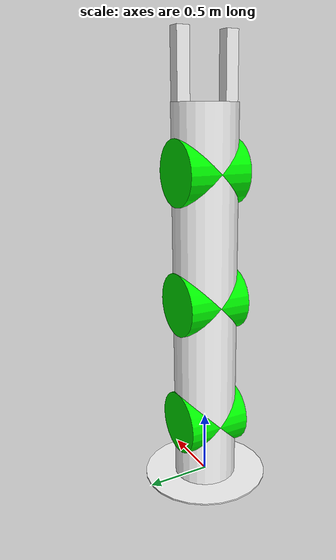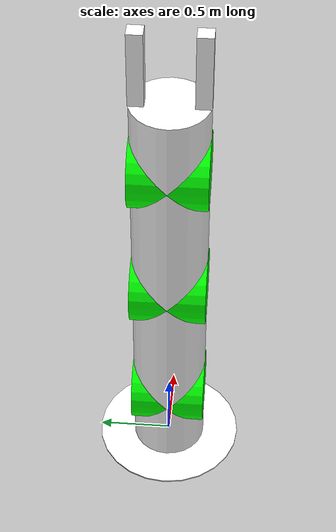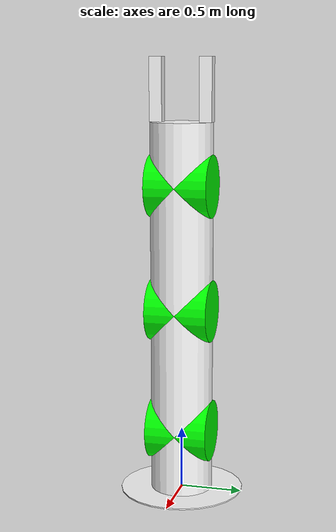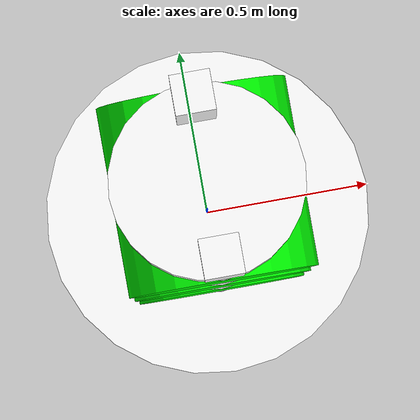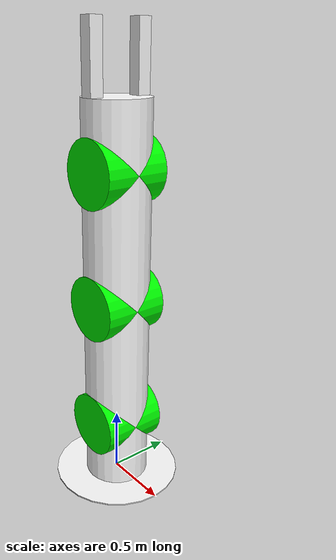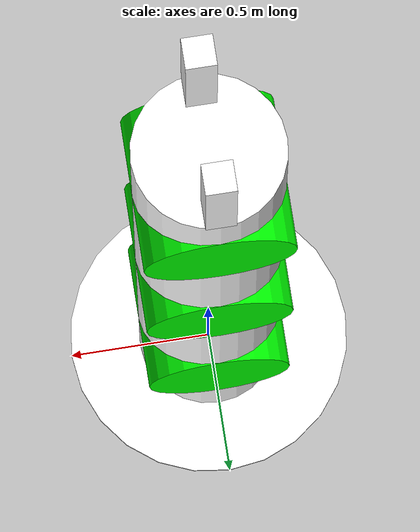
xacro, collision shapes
<?xml version="1.0"?>
<robot xmlns:xacro="http://www.ros.org/wiki/xacro"
       name="rosbook_arm">

  <!-- Base, arm, gripper and RGB-D sensor -->
  <xacro:include filename="$(find rosbook_arm_description)/urdf/base/base.urdf.xacro"/>
  <xacro:include filename="$(find rosbook_arm_description)/urdf/arm/arm.urdf.xacro"/>
  <xacro:include filename="$(find rosbook_arm_description)/urdf/gripper/gripper.urdf.xacro"/>
  <xacro:include filename="$(find rosbook_arm_description)/urdf/sensors/xtion_pro_live.urdf.xacro"/>

  <!-- Generic simulator_gazebo plugins -->
  <xacro:include filename="$(find rosbook_arm_description)/gazebo/gazebo.urdf.xacro"/>

  <!-- Materials for visualization -->
  <xacro:include filename="$(find rosbook_arm_description)/urdf/materials.urdf.xacro"/>

  <!-- Define arm with gripper mounted on a base -->
  <xacro:base name="base"/>
  <xacro:arm parent="base"/>
  <xacro:gripper parent="tool"/>

  <!-- Define RGB-D sensor -->
  <xacro:xtion_pro_live name="rgbd_camera" parent="base">
    <origin xyz="0.5 0 3.5" rpy="0 ${75.0 * deg_to_rad} 0"/>
    <origin xyz="0 0 0" rpy="${-90.0 * deg_to_rad} 0 ${-90.0 * deg_to_rad}"/>
  </xacro:xtion_pro_live>
</robot>

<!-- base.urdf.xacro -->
<robot xmlns:xacro="http://www.ros.org/wiki/xacro">

  <xacro:include filename="$(find rosbook_arm_description)/urdf/inertia.xacro"/>
  <xacro:include filename="$(find rosbook_arm_description)/urdf/base/base.gazebo.xacro"/>

  <xacro:macro name="base" params="name">
    <link name="${name}_link">
      <visual>
        <geometry>
          <cylinder length="0.01" radius="0.5"/>
        </geometry>
        <origin xyz="0.0 0.0 0.0"/>
        <material name="white"/>
      </visual>

      <collision>
        <geometry>
          <cylinder length="0.01" radius="0.5"/>
        </geometry>
        <origin xyz="0.0 0.0 0.0"/>
      </collision>

      <inertial>
        <origin xyz="0.0 0.0 0.0"/>
        <mass value="1"/>
        <cylinder_inertia mass="1" radius="0.5" length="0.01"/>
      </inertial>
    </link>

    <!-- Simulation (gazebo) -->
    <base_gazebo/>
  </xacro:macro>

</robot>

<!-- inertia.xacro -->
<robot xmlns:xacro="http://www.ros.org/wiki/xacro">

  <!-- Moment of inertia tensor for a solid cuboid of x, y and z dimensions
       (width, depth and height).
       See http://en.wikipedia.org/wiki/List_of_moments_of_inertia -->
  <macro name="cuboid_inertia" params="mass x y z">
    <inertia ixx="${1/12 * mass * (y * y + z * z)}" ixy="0.0" ixz="0.0"
             iyy="${1/12 * mass * (x * x + z * z)}" iyz="0.0"
             izz="${1/12 * mass * (x * x + y * y)}"/>
  </macro>

  <!-- Moment of inertia tensor for a solid cylinder of given mass, radius and
       length.
       See http://en.wikipedia.org/wiki/List_of_moments_of_inertia -->
  <macro name="cylinder_inertia" params="mass radius length">
    <inertia ixx="${1/12 * mass * (3 * radius * radius + length * length)}" ixy="0.0" ixz="0.0"
             iyy="${1/12 * mass * (3 * radius * radius + length * length)}" iyz="0.0"
             izz="${1/2  * mass * radius * radius}"/>
  </macro>

</robot>

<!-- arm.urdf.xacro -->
<robot xmlns:xacro="http://www.ros.org/wiki/xacro">

  <xacro:include filename="$(find rosbook_arm_description)/urdf/deg_to_rad.xacro"/>
  <xacro:include filename="$(find rosbook_arm_description)/urdf/inertia.xacro"/>
  <xacro:include filename="$(find rosbook_arm_description)/urdf/arm/arm.transmission.xacro"/>
  <xacro:include filename="$(find rosbook_arm_description)/urdf/arm/arm.gazebo.xacro"/>

  <xacro:property name="arm_mass"     value="0.01"/>
  <xacro:property name="arm_effort"   value="10.0"/>
  <xacro:property name="arm_velocity" value="5.0"/>
  <xacro:property name="arm_friction" value="0.0"/>
  <xacro:property name="arm_damping"  value="0.7"/>
  <xacro:property name="arm_eps"      value="0.01"/>

  <xacro:macro name="arm" params="parent">
    <link name="shoulder_link">
      <visual>
        <geometry>
          <cylinder length="0.5" radius="0.25"/>
        </geometry>
        <origin xyz="0.0 0.0 0.25"/>
        <material name="white"/>
      </visual>

      <collision>
        <geometry>
          <cylinder length="0.5" radius="0.25"/>
        </geometry>
        <origin xyz="0.0 0.0 0.25"/>
      </collision>

      <inertial>
        <origin xyz="0.0 0.0 0.25"/>
        <mass value="${arm_mass}"/>
        <cylinder_inertia mass="${arm_mass}" radius="0.25" length="0.5"/>
      </inertial>
    </link>

    <link name="upper_arm_link">
      <visual>
        <geometry>
          <cylinder length="1" radius="0.25"/>
        </geometry>
        <origin xyz="0.0 0.0 0.5"/>
        <material name="white"/>
      </visual>

      <collision>
        <geometry>
          <cylinder length="1" radius="0.25"/>
        </geometry>
        <origin xyz="0.0 0.0 0.5"/>
      </collision>

      <inertial>
        <origin xyz="0.0 0.0 0.5"/>
        <mass value="${arm_mass}"/>
        <cylinder_inertia mass="${arm_mass}" radius="0.25" length="1"/>
      </inertial>
    </link>

    <link name="forearm_link">
      <visual>
        <geometry>
          <cylinder length="1" radius="0.25"/>
        </geometry>
        <origin xyz="0.0 0.0 0.5"/>
        <material name="white"/>
      </visual>

      <collision>
        <geometry>
          <cylinder length="1" radius="0.25"/>
        </geometry>
        <origin xyz="0.0 0.0 0.5"/>
      </collision>

      <inertial>
        <origin xyz="0.0 0.0 0.5"/>
        <mass value="${arm_mass}"/>
        <cylinder_inertia mass="${arm_mass}" radius="0.25" length="1"/>
      </inertial>
    </link>

    <link name="rotor_0_link">
      <visual>
        <geometry>
          <cylinder length="0.5" radius="0.25"/>
        </geometry>
        <origin xyz="0.0 0.0 0.5" rpy="1.57079633 0.0 0.0"/>
        <material name="green"/>
      </visual>

      <collision>
        <geometry>
          <cylinder length="0.5" radius="0.25"/>
        </geometry>
        <origin xyz="0.0 0.0 0.5" rpy="1.57079633 0.0 0.0"/>
      </collision>

      <inertial>
        <origin xyz="0.0 0.0 0.5" rpy="1.57079633 0.0 0.0"/>
        <mass value="${arm_mass}"/>
        <cylinder_inertia mass="${arm_mass}" radius="0.25" length="0.5"/>
      </inertial>
    </link>

    <link name="rotor_1_link">
      <visual>
        <geometry>
          <cylinder length="0.5" radius="0.25"/>
        </geometry>
        <origin xyz="0.0 0.0 0.5" rpy="1.57079633 0.0 0.0"/>
        <material name="green"/>
      </visual>

      <collision>
        <geometry>
          <cylinder length="0.5" radius="0.25"/>
        </geometry>
        <origin xyz="0.0 0.0 0.5" rpy="1.57079633 0.0 0.0"/>
      </collision>

      <inertial>
        <origin xyz="0.0 0.0 0.5" rpy="1.57079633 0.0 0.0"/>
        <mass value="${arm_mass}"/>
        <cylinder_inertia mass="${arm_mass}" radius="0.25" length="0.5"/>
      </inertial>
    </link>

    <link name="rotor_2_link">
      <visual>
        <geometry>
          <cylinder length="0.5" radius="0.25"/>
        </geometry>
        <origin xyz="0.0 0.0 0.5" rpy="1.57079633 0.0 0.0"/>
        <material name="green"/>
      </visual>

      <collision>
        <geometry>
          <cylinder length="0.5" radius="0.25"/>
        </geometry>
        <origin xyz="0.0 0.0 0.5" rpy="1.57079633 0.0 0.0"/>
      </collision>

      <inertial>
        <origin xyz="0.0 0.0 0.5" rpy="1.57079633 0.0 0.0"/>
        <mass value="${arm_mass}"/>
        <cylinder_inertia mass="${arm_mass}" radius="0.25" length="0.5"/>
      </inertial>
    </link>

    <link name="tool_link">
      <visual>
        <geometry>
          <cylinder length="0.5" radius="0.25"/>
        </geometry>
        <origin xyz="0.0 0.0 0.25"/>
        <material name="white"/>
      </visual>

      <collision>
        <geometry>
          <cylinder length="0.5" radius="0.25"/>
        </geometry>
        <origin xyz="0.0 0.0 0.25"/>
      </collision>

      <inertial>
        <origin xyz="0.0 0.0 0.25"/>
        <mass value="${arm_mass}"/>
        <cylinder_inertia mass="${arm_mass}" radius="0.25" length="0.5"/>
      </inertial>
    </link>

    <joint name="shoulder_joint" type="revolute">
      <parent link="${parent}_link"/>
      <child link="shoulder_link"/>
      <origin xyz="0.0 0.0 0.0"/>
      <axis xyz="0 0 1"/>
      <limit effort="${arm_effort}"
             lower="${-180.0 * deg_to_rad}" upper="${180.0 * deg_to_rad}"
             velocity="${arm_velocity}"/>
      <dynamics friction="${arm_friction}" damping="${arm_damping}"/>

      <safety_controller k_position="20"
                         k_velocity="20"
                         soft_lower_limit="${-180.0 * deg_to_rad + arm_eps}"
                         soft_upper_limit="${ 180.0 * deg_to_rad - arm_eps}"/>
    </joint>

    <joint name="rotor_0_joint" type="revolute">
      <parent link="shoulder_link"/>
      <child link="rotor_0_link"/>
      <origin xyz="0.0 0.0 0.0"/>
      <axis xyz="0 0 1"/>
      <limit effort="${arm_effort}"
             lower="${-120.0 * deg_to_rad}" upper="${120.0 * deg_to_rad}"
             velocity="${arm_velocity}"/>
      <dynamics friction="${arm_friction}" damping="${arm_damping}"/>

      <safety_controller k_position="20"
                         k_velocity="20"
                         soft_lower_limit="${-120.0 * deg_to_rad + arm_eps}"
                         soft_upper_limit="${ 120.0 * deg_to_rad - arm_eps}"/>
    </joint>

    <joint name="upper_arm_joint" type="revolute">
      <parent link="rotor_0_link"/>
      <child link="upper_arm_link"/>
      <origin xyz="0.0 0.0 0.5"/>
      <axis xyz="0 1 0"/>
      <limit effort="${arm_effort}"
             lower="${-180.0 * deg_to_rad}" upper="${180.0 * deg_to_rad}"
             velocity="${arm_velocity}"/>
      <dynamics friction="${arm_friction}" damping="${arm_damping}"/>

      <safety_controller k_position="20"
                         k_velocity="20"
                         soft_lower_limit="${-180.0 * deg_to_rad + arm_eps}"
                         soft_upper_limit="${ 180.0 * deg_to_rad - arm_eps}"/>
    </joint>

    <joint name="rotor_1_joint" type="revolute">
      <parent link="upper_arm_link"/>
      <child link="rotor_1_link"/>
      <origin xyz="0.0 0.0 0.5"/>
      <axis xyz="0 0 1"/>
      <limit effort="${arm_effort}"
             lower="${-120.0 * deg_to_rad}" upper="${120.0 * deg_to_rad}"
             velocity="${arm_velocity}"/>
      <dynamics friction="${arm_friction}" damping="${arm_damping}"/>

      <safety_controller k_position="20"
                         k_velocity="20"
                         soft_lower_limit="${-120.0 * deg_to_rad + arm_eps}"
                         soft_upper_limit="${ 120.0 * deg_to_rad - arm_eps}"/>
    </joint>

    <joint name="forearm_joint" type="revolute">
      <parent link="rotor_1_link"/>
      <child link="forearm_link"/>
      <origin xyz="0.0 0.0 0.5"/>
      <axis xyz="0 1 0"/>
      <limit effort="${arm_effort}"
             lower="${-180.0 * deg_to_rad}" upper="${180.0 * deg_to_rad}"
             velocity="${arm_velocity}"/>
      <dynamics friction="${arm_friction}" damping="${arm_damping}"/>

      <safety_controller k_position="20"
                         k_velocity="20"
                         soft_lower_limit="${-180.0 * deg_to_rad + arm_eps}"
                         soft_upper_limit="${ 180.0 * deg_to_rad - arm_eps}"/>
    </joint>

    <joint name="rotor_2_joint" type="revolute">
      <parent link="forearm_link"/>
      <child link="rotor_2_link"/>
      <origin xyz="0.0 0.0 0.5"/>
      <axis xyz="0 0 1"/>
      <limit effort="${arm_effort}"
             lower="${-120.0 * deg_to_rad}" upper="${120.0 * deg_to_rad}"
             velocity="${arm_velocity}"/>
      <dynamics friction="${arm_friction}" damping="${arm_damping}"/>

      <safety_controller k_position="20"
                         k_velocity="20"
                         soft_lower_limit="${-120.0 * deg_to_rad + arm_eps}"
                         soft_upper_limit="${ 120.0 * deg_to_rad - arm_eps}"/>
    </joint>

    <joint name="tool_joint" type="revolute">
      <parent link="rotor_2_link"/>
      <child link="tool_link"/>
      <origin xyz="0.0 0.0 0.5"/>
      <axis xyz="0 1 0"/>
      <limit effort="${arm_effort}"
             lower="${-180.0 * deg_to_rad}" upper="${180.0 * deg_to_rad}"
             velocity="${arm_velocity}"/>
      <dynamics friction="${arm_friction}" damping="${arm_damping}"/>

      <safety_controller k_position="20"
                         k_velocity="20"
                         soft_lower_limit="${-180.0 * deg_to_rad + arm_eps}"
                         soft_upper_limit="${ 180.0 * deg_to_rad - arm_eps}"/>
    </joint>

    <!-- Transmissions -->
    <arm_simple_transmission name="shoulder"  reduction="1.0"/>
    <arm_simple_transmission name="rotor_0"   reduction="1.0"/>
    <arm_simple_transmission name="upper_arm" reduction="1.0"/>
    <arm_simple_transmission name="rotor_1"   reduction="1.0"/>
    <arm_simple_transmission name="forearm"   reduction="1.0"/>
    <arm_simple_transmission name="rotor_2"   reduction="1.0"/>
    <arm_simple_transmission name="tool"      reduction="1.0"/>

    <!-- Simulation (gazebo) -->
    <arm_gazebo/>
  </xacro:macro>
</robot>

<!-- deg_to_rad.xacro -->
<robot xmlns:xacro="http://ros.org/wiki/xacro">
  <property name="deg_to_rad" value="0.01745329251994329577"/>
</robot>

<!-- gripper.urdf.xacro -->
<robot xmlns:xacro="http://www.ros.org/wiki/xacro">

  <xacro:include filename="$(find rosbook_arm_description)/urdf/deg_to_rad.xacro" />
  <xacro:include filename="$(find rosbook_arm_description)/urdf/inertia.xacro"/>
  <xacro:include filename="$(find rosbook_arm_description)/urdf/gripper/gripper.transmission.xacro"/>
  <xacro:include filename="$(find rosbook_arm_description)/urdf/gripper/gripper.gazebo.xacro"/>

  <xacro:property name="gripper_mass" value="0.001"/>
  <xacro:property name="gripper_friction" value="0.0"/>
  <xacro:property name="gripper_damping" value="0.5"/>
  <xacro:property name="gripper_eps" value="0.02"/>

  <xacro:macro name="gripper" params="parent">
    <link name="finger_1_link">
      <visual>
        <geometry>
          <box size="0.1 0.1 0.5"/>
        </geometry>
        <origin xyz="0.0 0.0 0.25"/>
        <material name="white"/>
      </visual>

      <collision>
        <geometry>
          <box size="0.1 0.1 0.5"/>
        </geometry>
        <origin xyz="0.0 0.0 0.25"/>
      </collision>

      <inertial>
        <origin xyz="0.0 0.0 0.25"/>
        <mass value="${gripper_mass}"/>
        <cuboid_inertia mass="0.01" x="0.1" y="0.1" z="0.5"/>
      </inertial>
    </link>

    <link name="finger_2_link">
      <visual>
        <geometry>
          <box size="0.1 0.1 0.5"/>
        </geometry>
        <origin xyz="0.0 0.0 0.25"/>
        <material name="white" />
      </visual>

      <collision>
        <geometry>
          <box size="0.1 0.1 0.5"/>
        </geometry>
        <origin xyz="0.0 0.0 0.25"/>
      </collision>

      <inertial>
        <origin xyz="0.0 0.0 0.25"/>
        <mass value="${gripper_mass}"/>
        <cuboid_inertia mass="0.01" x="0.1" y="0.1" z="0.5"/>
      </inertial>
    </link>

    <joint name="finger_1_joint" type="prismatic">
      <parent link="${parent}_link"/>
      <child link="finger_1_link"/>
      <origin xyz="0.0 0.2 0.5"/>
      <axis xyz="0 1 0"/>
      <limit effort="1.0" lower="-0.15" upper="0.0" velocity="5.0"/>
      <dynamics friction="${gripper_friction}" damping="${gripper_damping}"/>

      <safety_controller k_position="20"
                         k_velocity="20"
                         soft_lower_limit="${-0.15 + gripper_eps}"
                         soft_upper_limit="${ 0.0  - gripper_eps}"/>
    </joint>

    <joint name="finger_2_joint" type="prismatic">
      <parent link="${parent}_link"/>
      <child link="finger_2_link"/>
      <origin xyz="0.0 -0.2 0.5"/>
      <axis xyz="0 1 0"/>
      <limit effort="1.0" lower="0" upper="0.15" velocity="5.0"/>
      <dynamics friction="${gripper_friction}" damping="${gripper_damping}"/>

      <safety_controller k_position="20"
                         k_velocity="20"
                         soft_lower_limit="${0.0  + gripper_eps}"
                         soft_upper_limit="${0.15 - gripper_eps}"/>
    </joint>

    <!-- Grasping frame -->
    <link name="grasping_frame">
      <inertial>
        <origin xyz="0 0 0" rpy="0 0 0"/>
        <mass value="0.0001"/>
        <cuboid_inertia mass="0.0001" x="0.001" y="0.001" z="0.001"/>
      </inertial>
    </link>

    <joint name="grasping_frame_joint" type="fixed">
      <parent link="${parent}_link"/>
      <child link="grasping_frame"/>
      <origin xyz="0 0 0.75" rpy="0 0 0"/>
    </joint>

    <!-- Transmissions -->
    <arm_simple_transmission name="finger_1" reduction="1.0"/>
    <arm_simple_transmission name="finger_2" reduction="1.0"/>

    <!-- Simulation (gazebo) -->
    <gripper_gazebo/>
  </xacro:macro>
</robot>

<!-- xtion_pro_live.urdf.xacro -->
<robot xmlns:xacro="http://ros.org/wiki/xacro">

  <xacro:include filename="$(find rosbook_arm_description)/urdf/sensors/xtion_pro_live.gazebo.xacro"/>

  <xacro:macro name="dummy_inertial">
    <inertial>
      <origin xyz="0 0 0" rpy="0 0 0"/>
      <mass value="0.001"/>
      <inertia ixx="0.00001" ixy="0" ixz="0"
               iyy="0.00001" iyz="0"
               izz="0.00001"/>
    </inertial>
  </xacro:macro>

  <xacro:macro name="xtion_pro_live" params="name parent *origin *optical_origin">

    <!-- frames in the center of the camera -->
    <joint name="${name}_joint" type="fixed">
      <insert_block name="origin"/>
      <parent link="${parent}_link"/>
      <child link="${name}_link"/>
    </joint>

    <link name="${name}_link">
      <inertial>
        <origin xyz="-0.00936000000 -0.00003000000 -0.00273000000" rpy="0 0 0"/>
        <mass value="0.21970000000"/>
        <inertia ixx="0.00000429247" ixy="0.00000000000" ixz="0.00000002565"
                 iyy="0.00000008027" iyz="0.00000000000"
                 izz="0.00000427339"/>
      </inertial>
      <visual>
        <origin xyz="0 0 0" rpy="0 0 0"/>
        <geometry>
          <mesh filename="package://rosbook_arm_description/meshes/sensors/xtion_pro_live/xtion_pro_live.dae"/>
        </geometry>
        <material name="DarkGrey"/>
      </visual>
    </link>

    <joint name="${name}_optical_joint" type="fixed">
      <insert_block name="optical_origin"/>
      <parent link="${name}_link"/>
      <child link="${name}_optical_frame"/>
    </joint>

    <link name="${name}_optical_frame">
      <dummy_inertial/>
    </link>

    <!-- Depth sensor frames -->
    <joint name="${name}_depth_joint" type="fixed">
      <origin xyz="0.0 0.049 0.0" rpy="0 0 0"/>
      <parent link="${name}_link"/>
      <child link="${name}_depth_frame"/>
    </joint>

    <link name="${name}_depth_frame">
      <dummy_inertial/>
    </link>

    <joint name="${name}_depth_optical_joint" type="fixed">
      <origin xyz="0 0 0" rpy="${-90.0 * deg_to_rad} 0.0 ${-90.0 * deg_to_rad}"/>
      <parent link="${name}_depth_frame"/>
      <child link="${name}_depth_optical_frame"/>
    </joint>

    <link name="${name}_depth_optical_frame">
      <dummy_inertial/>
    </link>

    <!-- RGB sensor frames -->
    <joint name="${name}_rgb_joint" type="fixed">
      <origin xyz="0.0 0.022 0.0" rpy="0 0 0"/>
      <parent link="${name}_link"/>
      <child link="${name}_rgb_frame"/>
    </joint>

    <link name="${name}_rgb_frame">
      <dummy_inertial/>
    </link>

    <joint name="${name}_rgb_optical_joint" type="fixed">
      <origin xyz="0 0 0" rpy="${-90.0 * deg_to_rad} 0.0 ${-90.0 * deg_to_rad}"/>
      <parent link="${name}_rgb_frame"/>
      <child link="${name}_rgb_optical_frame"/>
    </joint>

    <link name="${name}_rgb_optical_frame">
      <dummy_inertial/>
    </link>

    <xacro:xtion_pro_live_rgbd_camera_gazebo name="${name}"/>
  </xacro:macro>

</robot>

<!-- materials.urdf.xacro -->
<robot>
  <material name="green">
    <color rgba="0.0 1.0 0.0 1.0"/>
  </material>

  <material name="white">
    <color rgba="1.0 1.0 1.0 1.0"/>
  </material>
</robot>
